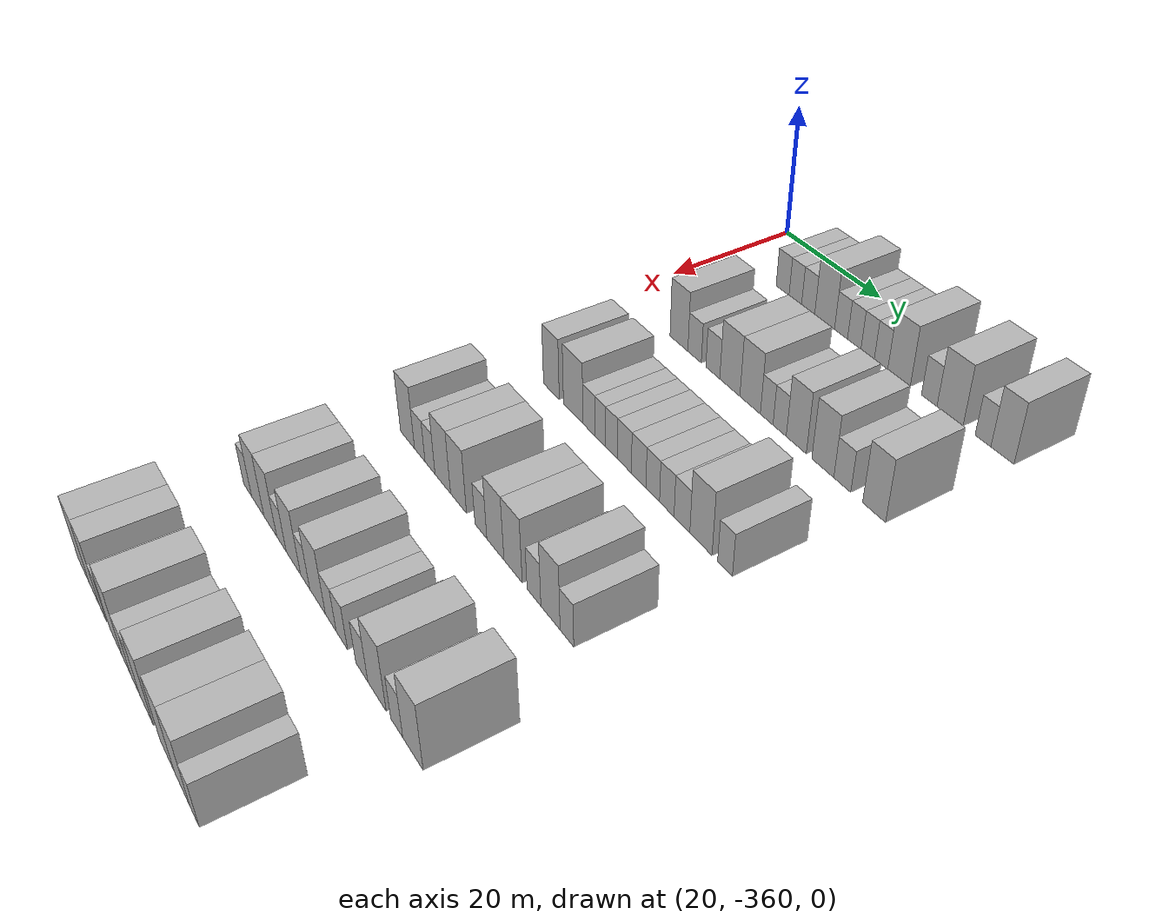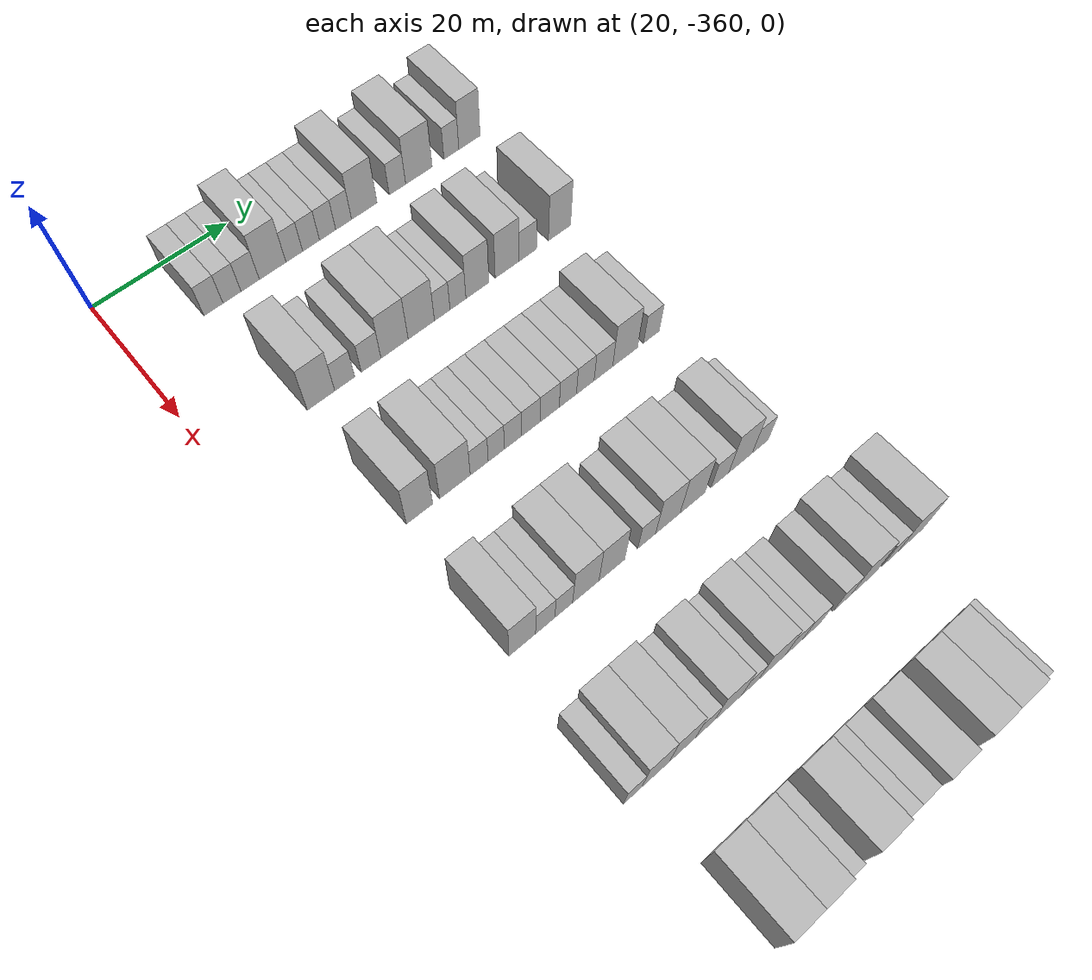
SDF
<sdf version="1.6">
 <world name="default">
  <model name="building_1">
   <static>1</static>
   <pose>25.0000 -348.5948 0 0.000000 0.000000 0.000000</pose>
   <link name="link">
    <pose>0 0 3.00 0 0 0</pose>
    <collision name="collision"><geometry><box><size>10.0000 2.8103 6.0000</size></box></geometry></collision>
    <visual name="visual">
     <cast_shadows>0</cast_shadows>
     <geometry><box><size>10.0000 2.8103 6.0000</size></box></geometry>
     <material>
      <script>
       <uri>model://HANNAS_wall/materials/scripts</uri>
       <uri>model://HANNAS_wall/materials/textures</uri>
       <name>vrc/HANNAS_wall</name>
      </script>
     </material>
    </visual>
   </link>
  </model>
  <model name="building_2">
   <static>1</static>
   <pose>25.0000 -345.8489 0 0.000000 0.000000 0.000000</pose>
   <link name="link">
    <pose>0 0 3.00 0 0 0</pose>
    <collision name="collision"><geometry><box><size>10.0000 2.6815 6.0000</size></box></geometry></collision>
    <visual name="visual">
     <cast_shadows>0</cast_shadows>
     <geometry><box><size>10.0000 2.6815 6.0000</size></box></geometry>
     <material>
      <script>
       <uri>model://HANNAS_wall/materials/scripts</uri>
       <uri>model://HANNAS_wall/materials/textures</uri>
       <name>vrc/HANNAS_wall</name>
      </script>
     </material>
    </visual>
   </link>
  </model>
  <model name="building_3">
   <static>1</static>
   <pose>25.0000 -343.1325 0 0.000000 0.000000 0.000000</pose>
   <link name="link">
    <pose>0 0 3.00 0 0 0</pose>
    <collision name="collision"><geometry><box><size>10.0000 2.7512 6.0000</size></box></geometry></collision>
    <visual name="visual">
     <cast_shadows>0</cast_shadows>
     <geometry><box><size>10.0000 2.7512 6.0000</size></box></geometry>
     <material>
      <script>
       <uri>model://HANNAS_wall/materials/scripts</uri>
       <uri>model://HANNAS_wall/materials/textures</uri>
       <name>vrc/HANNAS_wall</name>
      </script>
     </material>
    </visual>
   </link>
  </model>
  <model name="building_4">
   <static>1</static>
   <pose>25.0000 -339.7315 0 0.000000 0.000000 0.000000</pose>
   <link name="link">
    <pose>0 0 4.50 0 0 0</pose>
    <collision name="collision"><geometry><box><size>10.0000 4.0510 9.0000</size></box></geometry></collision>
    <visual name="visual">
     <cast_shadows>0</cast_shadows>
     <geometry><box><size>10.0000 4.0510 9.0000</size></box></geometry>
     <material>
      <script>
       <uri>model://HANNAS_wall/materials/scripts</uri>
       <uri>model://HANNAS_wall/materials/textures</uri>
       <name>vrc/HANNAS_wall</name>
      </script>
     </material>
    </visual>
   </link>
  </model>
  <model name="building_5">
   <static>1</static>
   <pose>25.0000 -336.4116 0 0.000000 0.000000 0.000000</pose>
   <link name="link">
    <pose>0 0 3.00 0 0 0</pose>
    <collision name="collision"><geometry><box><size>10.0000 2.5887 6.0000</size></box></geometry></collision>
    <visual name="visual">
     <cast_shadows>0</cast_shadows>
     <geometry><box><size>10.0000 2.5887 6.0000</size></box></geometry>
     <material>
      <script>
       <uri>model://HANNAS_wall/materials/scripts</uri>
       <uri>model://HANNAS_wall/materials/textures</uri>
       <name>vrc/HANNAS_wall</name>
      </script>
     </material>
    </visual>
   </link>
  </model>
  <model name="building_6">
   <static>1</static>
   <pose>25.0000 -333.8013 0 0.000000 0.000000 0.000000</pose>
   <link name="link">
    <pose>0 0 3.00 0 0 0</pose>
    <collision name="collision"><geometry><box><size>10.0000 2.6320 6.0000</size></box></geometry></collision>
    <visual name="visual">
     <cast_shadows>0</cast_shadows>
     <geometry><box><size>10.0000 2.6320 6.0000</size></box></geometry>
     <material>
      <script>
       <uri>model://HANNAS_wall/materials/scripts</uri>
       <uri>model://HANNAS_wall/materials/textures</uri>
       <name>vrc/HANNAS_wall</name>
      </script>
     </material>
    </visual>
   </link>
  </model>
  <model name="building_7">
   <static>1</static>
   <pose>25.0000 -331.2124 0 0.000000 0.000000 0.000000</pose>
   <link name="link">
    <pose>0 0 3.00 0 0 0</pose>
    <collision name="collision"><geometry><box><size>10.0000 2.5458 6.0000</size></box></geometry></collision>
    <visual name="visual">
     <cast_shadows>0</cast_shadows>
     <geometry><box><size>10.0000 2.5458 6.0000</size></box></geometry>
     <material>
      <script>
       <uri>model://HANNAS_wall/materials/scripts</uri>
       <uri>model://HANNAS_wall/materials/textures</uri>
       <name>vrc/HANNAS_wall</name>
      </script>
     </material>
    </visual>
   </link>
  </model>
  <model name="building_8">
   <static>1</static>
   <pose>25.0000 -328.6746 0 0.000000 0.000000 0.000000</pose>
   <link name="link">
    <pose>0 0 3.00 0 0 0</pose>
    <collision name="collision"><geometry><box><size>10.0000 2.5298 6.0000</size></box></geometry></collision>
    <visual name="visual">
     <cast_shadows>0</cast_shadows>
     <geometry><box><size>10.0000 2.5298 6.0000</size></box></geometry>
     <material>
      <script>
       <uri>model://HANNAS_wall/materials/scripts</uri>
       <uri>model://HANNAS_wall/materials/textures</uri>
       <name>vrc/HANNAS_wall</name>
      </script>
     </material>
    </visual>
   </link>
  </model>
  <model name="building_9">
   <static>1</static>
   <pose>25.0000 -325.3544 0 0.000000 0.000000 0.000000</pose>
   <link name="link">
    <pose>0 0 4.50 0 0 0</pose>
    <collision name="collision"><geometry><box><size>10.0000 4.1104 9.0000</size></box></geometry></collision>
    <visual name="visual">
     <cast_shadows>0</cast_shadows>
     <geometry><box><size>10.0000 4.1104 9.0000</size></box></geometry>
     <material>
      <script>
       <uri>model://HANNAS_wall/materials/scripts</uri>
       <uri>model://HANNAS_wall/materials/textures</uri>
       <name>vrc/HANNAS_wall</name>
      </script>
     </material>
    </visual>
   </link>
  </model>
  <model name="building_10">
   <static>1</static>
   <pose>25.0000 -319.9469 0 0.000000 0.000000 0.000000</pose>
   <link name="link">
    <pose>0 0 3.00 0 0 0</pose>
    <collision name="collision"><geometry><box><size>10.0000 2.7046 6.0000</size></box></geometry></collision>
    <visual name="visual">
     <cast_shadows>0</cast_shadows>
     <geometry><box><size>10.0000 2.7046 6.0000</size></box></geometry>
     <material>
      <script>
       <uri>model://HANNAS_wall/materials/scripts</uri>
       <uri>model://HANNAS_wall/materials/textures</uri>
       <name>vrc/HANNAS_wall</name>
      </script>
     </material>
    </visual>
   </link>
  </model>
  <model name="building_11">
   <static>1</static>
   <pose>25.0000 -316.3787 0 0.000000 0.000000 0.000000</pose>
   <link name="link">
    <pose>0 0 4.50 0 0 0</pose>
    <collision name="collision"><geometry><box><size>10.0000 4.4319 9.0000</size></box></geometry></collision>
    <visual name="visual">
     <cast_shadows>0</cast_shadows>
     <geometry><box><size>10.0000 4.4319 9.0000</size></box></geometry>
     <material>
      <script>
       <uri>model://HANNAS_wall/materials/scripts</uri>
       <uri>model://HANNAS_wall/materials/textures</uri>
       <name>vrc/HANNAS_wall</name>
      </script>
     </material>
    </visual>
   </link>
  </model>
  <model name="building_12">
   <static>1</static>
   <pose>25.0000 -310.8884 0 0.000000 0.000000 0.000000</pose>
   <link name="link">
    <pose>0 0 3.00 0 0 0</pose>
    <collision name="collision"><geometry><box><size>10.0000 2.5488 6.0000</size></box></geometry></collision>
    <visual name="visual">
     <cast_shadows>0</cast_shadows>
     <geometry><box><size>10.0000 2.5488 6.0000</size></box></geometry>
     <material>
      <script>
       <uri>model://HANNAS_wall/materials/scripts</uri>
       <uri>model://HANNAS_wall/materials/textures</uri>
       <name>vrc/HANNAS_wall</name>
      </script>
     </material>
    </visual>
   </link>
  </model>
  <model name="building_13">
   <static>1</static>
   <pose>25.0000 -307.7867 0 0.000000 0.000000 0.000000</pose>
   <link name="link">
    <pose>0 0 4.50 0 0 0</pose>
    <collision name="collision"><geometry><box><size>10.0000 3.6547 9.0000</size></box></geometry></collision>
    <visual name="visual">
     <cast_shadows>0</cast_shadows>
     <geometry><box><size>10.0000 3.6547 9.0000</size></box></geometry>
     <material>
      <script>
       <uri>model://HANNAS_wall/materials/scripts</uri>
       <uri>model://HANNAS_wall/materials/textures</uri>
       <name>vrc/HANNAS_wall</name>
      </script>
     </material>
    </visual>
   </link>
  </model>
  <model name="building_177">
   <static>1</static>
   <pose>44.0000 -345.9972 0 0.000000 0.000000 0.000000</pose>
   <link name="link">
    <pose>0 0 4.50 0 0 0</pose>
    <collision name="collision"><geometry><box><size>10.0000 4.0056 9.0000</size></box></geometry></collision>
    <visual name="visual">
     <cast_shadows>0</cast_shadows>
     <geometry><box><size>10.0000 4.0056 9.0000</size></box></geometry>
     <material>
      <script>
       <uri>model://HANNAS_wall/materials/scripts</uri>
       <uri>model://HANNAS_wall/materials/textures</uri>
       <name>vrc/HANNAS_wall</name>
      </script>
     </material>
    </visual>
   </link>
  </model>
  <model name="building_178">
   <static>1</static>
   <pose>44.0000 -342.5239 0 0.000000 0.000000 0.000000</pose>
   <link name="link">
    <pose>0 0 3.00 0 0 0</pose>
    <collision name="collision"><geometry><box><size>10.0000 2.9409 6.0000</size></box></geometry></collision>
    <visual name="visual">
     <cast_shadows>0</cast_shadows>
     <geometry><box><size>10.0000 2.9409 6.0000</size></box></geometry>
     <material>
      <script>
       <uri>model://HANNAS_wall/materials/scripts</uri>
       <uri>model://HANNAS_wall/materials/textures</uri>
       <name>vrc/HANNAS_wall</name>
      </script>
     </material>
    </visual>
   </link>
  </model>
  <model name="building_179">
   <static>1</static>
   <pose>44.0000 -338.5790 0 0.000000 0.000000 0.000000</pose>
   <link name="link">
    <pose>0 0 3.00 0 0 0</pose>
    <collision name="collision"><geometry><box><size>10.0000 2.9491 6.0000</size></box></geometry></collision>
    <visual name="visual">
     <cast_shadows>0</cast_shadows>
     <geometry><box><size>10.0000 2.9491 6.0000</size></box></geometry>
     <material>
      <script>
       <uri>model://HANNAS_wall/materials/scripts</uri>
       <uri>model://HANNAS_wall/materials/textures</uri>
       <name>vrc/HANNAS_wall</name>
      </script>
     </material>
    </visual>
   </link>
  </model>
  <model name="building_180">
   <static>1</static>
   <pose>44.0000 -335.0302 0 0.000000 0.000000 0.000000</pose>
   <link name="link">
    <pose>0 0 4.50 0 0 0</pose>
    <collision name="collision"><geometry><box><size>10.0000 4.1485 9.0000</size></box></geometry></collision>
    <visual name="visual">
     <cast_shadows>0</cast_shadows>
     <geometry><box><size>10.0000 4.1485 9.0000</size></box></geometry>
     <material>
      <script>
       <uri>model://HANNAS_wall/materials/scripts</uri>
       <uri>model://HANNAS_wall/materials/textures</uri>
       <name>vrc/HANNAS_wall</name>
      </script>
     </material>
    </visual>
   </link>
  </model>
  <model name="building_181">
   <static>1</static>
   <pose>44.0000 -330.9085 0 0.000000 0.000000 0.000000</pose>
   <link name="link">
    <pose>0 0 4.50 0 0 0</pose>
    <collision name="collision"><geometry><box><size>10.0000 4.0949 9.0000</size></box></geometry></collision>
    <visual name="visual">
     <cast_shadows>0</cast_shadows>
     <geometry><box><size>10.0000 4.0949 9.0000</size></box></geometry>
     <material>
      <script>
       <uri>model://HANNAS_wall/materials/scripts</uri>
       <uri>model://HANNAS_wall/materials/textures</uri>
       <name>vrc/HANNAS_wall</name>
      </script>
     </material>
    </visual>
   </link>
  </model>
  <model name="building_182">
   <static>1</static>
   <pose>44.0000 -327.6305 0 0.000000 0.000000 0.000000</pose>
   <link name="link">
    <pose>0 0 3.00 0 0 0</pose>
    <collision name="collision"><geometry><box><size>10.0000 2.4610 6.0000</size></box></geometry></collision>
    <visual name="visual">
     <cast_shadows>0</cast_shadows>
     <geometry><box><size>10.0000 2.4610 6.0000</size></box></geometry>
     <material>
      <script>
       <uri>model://HANNAS_wall/materials/scripts</uri>
       <uri>model://HANNAS_wall/materials/textures</uri>
       <name>vrc/HANNAS_wall</name>
      </script>
     </material>
    </visual>
   </link>
  </model>
  <model name="building_183">
   <static>1</static>
   <pose>44.0000 -325.1405 0 0.000000 0.000000 0.000000</pose>
   <link name="link">
    <pose>0 0 3.00 0 0 0</pose>
    <collision name="collision"><geometry><box><size>10.0000 2.5191 6.0000</size></box></geometry></collision>
    <visual name="visual">
     <cast_shadows>0</cast_shadows>
     <geometry><box><size>10.0000 2.5191 6.0000</size></box></geometry>
     <material>
      <script>
       <uri>model://HANNAS_wall/materials/scripts</uri>
       <uri>model://HANNAS_wall/materials/textures</uri>
       <name>vrc/HANNAS_wall</name>
      </script>
     </material>
    </visual>
   </link>
  </model>
  <model name="building_184">
   <static>1</static>
   <pose>44.0000 -322.0213 0 0.000000 0.000000 0.000000</pose>
   <link name="link">
    <pose>0 0 4.50 0 0 0</pose>
    <collision name="collision"><geometry><box><size>10.0000 3.7193 9.0000</size></box></geometry></collision>
    <visual name="visual">
     <cast_shadows>0</cast_shadows>
     <geometry><box><size>10.0000 3.7193 9.0000</size></box></geometry>
     <material>
      <script>
       <uri>model://HANNAS_wall/materials/scripts</uri>
       <uri>model://HANNAS_wall/materials/textures</uri>
       <name>vrc/HANNAS_wall</name>
      </script>
     </material>
    </visual>
   </link>
  </model>
  <model name="building_185">
   <static>1</static>
   <pose>44.0000 -317.2071 0 0.000000 0.000000 0.000000</pose>
   <link name="link">
    <pose>0 0 4.50 0 0 0</pose>
    <collision name="collision"><geometry><box><size>10.0000 3.9092 9.0000</size></box></geometry></collision>
    <visual name="visual">
     <cast_shadows>0</cast_shadows>
     <geometry><box><size>10.0000 3.9092 9.0000</size></box></geometry>
     <material>
      <script>
       <uri>model://HANNAS_wall/materials/scripts</uri>
       <uri>model://HANNAS_wall/materials/textures</uri>
       <name>vrc/HANNAS_wall</name>
      </script>
     </material>
    </visual>
   </link>
  </model>
  <model name="building_186">
   <static>1</static>
   <pose>44.0000 -313.7896 0 0.000000 0.000000 0.000000</pose>
   <link name="link">
    <pose>0 0 3.00 0 0 0</pose>
    <collision name="collision"><geometry><box><size>10.0000 2.9258 6.0000</size></box></geometry></collision>
    <visual name="visual">
     <cast_shadows>0</cast_shadows>
     <geometry><box><size>10.0000 2.9258 6.0000</size></box></geometry>
     <material>
      <script>
       <uri>model://HANNAS_wall/materials/scripts</uri>
       <uri>model://HANNAS_wall/materials/textures</uri>
       <name>vrc/HANNAS_wall</name>
      </script>
     </material>
    </visual>
   </link>
  </model>
  <model name="building_187">
   <static>1</static>
   <pose>44.0000 -308.4362 0 0.000000 0.000000 0.000000</pose>
   <link name="link">
    <pose>0 0 4.50 0 0 0</pose>
    <collision name="collision"><geometry><box><size>10.0000 3.7809 9.0000</size></box></geometry></collision>
    <visual name="visual">
     <cast_shadows>0</cast_shadows>
     <geometry><box><size>10.0000 3.7809 9.0000</size></box></geometry>
     <material>
      <script>
       <uri>model://HANNAS_wall/materials/scripts</uri>
       <uri>model://HANNAS_wall/materials/textures</uri>
       <name>vrc/HANNAS_wall</name>
      </script>
     </material>
    </visual>
   </link>
  </model>
  <model name="building_355">
   <static>1</static>
   <pose>63.0000 -346.1087 0 0.000000 0.000000 0.000000</pose>
   <link name="link">
    <pose>0 0 4.50 0 0 0</pose>
    <collision name="collision"><geometry><box><size>10.0000 3.7826 9.0000</size></box></geometry></collision>
    <visual name="visual">
     <cast_shadows>0</cast_shadows>
     <geometry><box><size>10.0000 3.7826 9.0000</size></box></geometry>
     <material>
      <script>
       <uri>model://HANNAS_wall/materials/scripts</uri>
       <uri>model://HANNAS_wall/materials/textures</uri>
       <name>vrc/HANNAS_wall</name>
      </script>
     </material>
    </visual>
   </link>
  </model>
  <model name="building_356">
   <static>1</static>
   <pose>63.0000 -340.9715 0 0.000000 0.000000 0.000000</pose>
   <link name="link">
    <pose>0 0 4.50 0 0 0</pose>
    <collision name="collision"><geometry><box><size>10.0000 4.4917 9.0000</size></box></geometry></collision>
    <visual name="visual">
     <cast_shadows>0</cast_shadows>
     <geometry><box><size>10.0000 4.4917 9.0000</size></box></geometry>
     <material>
      <script>
       <uri>model://HANNAS_wall/materials/scripts</uri>
       <uri>model://HANNAS_wall/materials/textures</uri>
       <name>vrc/HANNAS_wall</name>
      </script>
     </material>
    </visual>
   </link>
  </model>
  <model name="building_357">
   <static>1</static>
   <pose>63.0000 -337.3914 0 0.000000 0.000000 0.000000</pose>
   <link name="link">
    <pose>0 0 3.00 0 0 0</pose>
    <collision name="collision"><geometry><box><size>10.0000 2.6686 6.0000</size></box></geometry></collision>
    <visual name="visual">
     <cast_shadows>0</cast_shadows>
     <geometry><box><size>10.0000 2.6686 6.0000</size></box></geometry>
     <material>
      <script>
       <uri>model://HANNAS_wall/materials/scripts</uri>
       <uri>model://HANNAS_wall/materials/textures</uri>
       <name>vrc/HANNAS_wall</name>
      </script>
     </material>
    </visual>
   </link>
  </model>
  <model name="building_358">
   <static>1</static>
   <pose>63.0000 -334.8522 0 0.000000 0.000000 0.000000</pose>
   <link name="link">
    <pose>0 0 3.00 0 0 0</pose>
    <collision name="collision"><geometry><box><size>10.0000 2.4099 6.0000</size></box></geometry></collision>
    <visual name="visual">
     <cast_shadows>0</cast_shadows>
     <geometry><box><size>10.0000 2.4099 6.0000</size></box></geometry>
     <material>
      <script>
       <uri>model://HANNAS_wall/materials/scripts</uri>
       <uri>model://HANNAS_wall/materials/textures</uri>
       <name>vrc/HANNAS_wall</name>
      </script>
     </material>
    </visual>
   </link>
  </model>
  <model name="building_359">
   <static>1</static>
   <pose>63.0000 -332.3664 0 0.000000 0.000000 0.000000</pose>
   <link name="link">
    <pose>0 0 3.00 0 0 0</pose>
    <collision name="collision"><geometry><box><size>10.0000 2.5617 6.0000</size></box></geometry></collision>
    <visual name="visual">
     <cast_shadows>0</cast_shadows>
     <geometry><box><size>10.0000 2.5617 6.0000</size></box></geometry>
     <material>
      <script>
       <uri>model://HANNAS_wall/materials/scripts</uri>
       <uri>model://HANNAS_wall/materials/textures</uri>
       <name>vrc/HANNAS_wall</name>
      </script>
     </material>
    </visual>
   </link>
  </model>
  <model name="building_360">
   <static>1</static>
   <pose>63.0000 -329.6274 0 0.000000 0.000000 0.000000</pose>
   <link name="link">
    <pose>0 0 3.00 0 0 0</pose>
    <collision name="collision"><geometry><box><size>10.0000 2.9163 6.0000</size></box></geometry></collision>
    <visual name="visual">
     <cast_shadows>0</cast_shadows>
     <geometry><box><size>10.0000 2.9163 6.0000</size></box></geometry>
     <material>
      <script>
       <uri>model://HANNAS_wall/materials/scripts</uri>
       <uri>model://HANNAS_wall/materials/textures</uri>
       <name>vrc/HANNAS_wall</name>
      </script>
     </material>
    </visual>
   </link>
  </model>
  <model name="building_361">
   <static>1</static>
   <pose>63.0000 -326.6752 0 0.000000 0.000000 0.000000</pose>
   <link name="link">
    <pose>0 0 3.00 0 0 0</pose>
    <collision name="collision"><geometry><box><size>10.0000 2.9880 6.0000</size></box></geometry></collision>
    <visual name="visual">
     <cast_shadows>0</cast_shadows>
     <geometry><box><size>10.0000 2.9880 6.0000</size></box></geometry>
     <material>
      <script>
       <uri>model://HANNAS_wall/materials/scripts</uri>
       <uri>model://HANNAS_wall/materials/textures</uri>
       <name>vrc/HANNAS_wall</name>
      </script>
     </material>
    </visual>
   </link>
  </model>
  <model name="building_362">
   <static>1</static>
   <pose>63.0000 -323.8228 0 0.000000 0.000000 0.000000</pose>
   <link name="link">
    <pose>0 0 3.00 0 0 0</pose>
    <collision name="collision"><geometry><box><size>10.0000 2.7167 6.0000</size></box></geometry></collision>
    <visual name="visual">
     <cast_shadows>0</cast_shadows>
     <geometry><box><size>10.0000 2.7167 6.0000</size></box></geometry>
     <material>
      <script>
       <uri>model://HANNAS_wall/materials/scripts</uri>
       <uri>model://HANNAS_wall/materials/textures</uri>
       <name>vrc/HANNAS_wall</name>
      </script>
     </material>
    </visual>
   </link>
  </model>
  <model name="building_363">
   <static>1</static>
   <pose>63.0000 -321.0519 0 0.000000 0.000000 0.000000</pose>
   <link name="link">
    <pose>0 0 3.00 0 0 0</pose>
    <collision name="collision"><geometry><box><size>10.0000 2.8251 6.0000</size></box></geometry></collision>
    <visual name="visual">
     <cast_shadows>0</cast_shadows>
     <geometry><box><size>10.0000 2.8251 6.0000</size></box></geometry>
     <material>
      <script>
       <uri>model://HANNAS_wall/materials/scripts</uri>
       <uri>model://HANNAS_wall/materials/textures</uri>
       <name>vrc/HANNAS_wall</name>
      </script>
     </material>
    </visual>
   </link>
  </model>
  <model name="building_364">
   <static>1</static>
   <pose>63.0000 -318.1398 0 0.000000 0.000000 0.000000</pose>
   <link name="link">
    <pose>0 0 3.00 0 0 0</pose>
    <collision name="collision"><geometry><box><size>10.0000 2.9991 6.0000</size></box></geometry></collision>
    <visual name="visual">
     <cast_shadows>0</cast_shadows>
     <geometry><box><size>10.0000 2.9991 6.0000</size></box></geometry>
     <material>
      <script>
       <uri>model://HANNAS_wall/materials/scripts</uri>
       <uri>model://HANNAS_wall/materials/textures</uri>
       <name>vrc/HANNAS_wall</name>
      </script>
     </material>
    </visual>
   </link>
  </model>
  <model name="building_365">
   <static>1</static>
   <pose>63.0000 -314.5963 0 0.000000 0.000000 0.000000</pose>
   <link name="link">
    <pose>0 0 4.50 0 0 0</pose>
    <collision name="collision"><geometry><box><size>10.0000 4.0879 9.0000</size></box></geometry></collision>
    <visual name="visual">
     <cast_shadows>0</cast_shadows>
     <geometry><box><size>10.0000 4.0879 9.0000</size></box></geometry>
     <material>
      <script>
       <uri>model://HANNAS_wall/materials/scripts</uri>
       <uri>model://HANNAS_wall/materials/textures</uri>
       <name>vrc/HANNAS_wall</name>
      </script>
     </material>
    </visual>
   </link>
  </model>
  <model name="building_366">
   <static>1</static>
   <pose>63.0000 -310.2497 0 0.000000 0.000000 0.000000</pose>
   <link name="link">
    <pose>0 0 3.00 0 0 0</pose>
    <collision name="collision"><geometry><box><size>10.0000 2.6053 6.0000</size></box></geometry></collision>
    <visual name="visual">
     <cast_shadows>0</cast_shadows>
     <geometry><box><size>10.0000 2.6053 6.0000</size></box></geometry>
     <material>
      <script>
       <uri>model://HANNAS_wall/materials/scripts</uri>
       <uri>model://HANNAS_wall/materials/textures</uri>
       <name>vrc/HANNAS_wall</name>
      </script>
     </material>
    </visual>
   </link>
  </model>
  <model name="building_527">
   <static>1</static>
   <pose>82.0000 -347.1268 0 0.000000 0.000000 0.000000</pose>
   <link name="link">
    <pose>0 0 4.50 0 0 0</pose>
    <collision name="collision"><geometry><box><size>10.0000 3.7465 9.0000</size></box></geometry></collision>
    <visual name="visual">
     <cast_shadows>0</cast_shadows>
     <geometry><box><size>10.0000 3.7465 9.0000</size></box></geometry>
     <material>
      <script>
       <uri>model://HANNAS_wall/materials/scripts</uri>
       <uri>model://HANNAS_wall/materials/textures</uri>
       <name>vrc/HANNAS_wall</name>
      </script>
     </material>
    </visual>
   </link>
  </model>
  <model name="building_528">
   <static>1</static>
   <pose>82.0000 -343.8830 0 0.000000 0.000000 0.000000</pose>
   <link name="link">
    <pose>0 0 3.00 0 0 0</pose>
    <collision name="collision"><geometry><box><size>10.0000 2.7410 6.0000</size></box></geometry></collision>
    <visual name="visual">
     <cast_shadows>0</cast_shadows>
     <geometry><box><size>10.0000 2.7410 6.0000</size></box></geometry>
     <material>
      <script>
       <uri>model://HANNAS_wall/materials/scripts</uri>
       <uri>model://HANNAS_wall/materials/textures</uri>
       <name>vrc/HANNAS_wall</name>
      </script>
     </material>
    </visual>
   </link>
  </model>
  <model name="building_529">
   <static>1</static>
   <pose>82.0000 -341.2353 0 0.000000 0.000000 0.000000</pose>
   <link name="link">
    <pose>0 0 3.00 0 0 0</pose>
    <collision name="collision"><geometry><box><size>10.0000 2.5544 6.0000</size></box></geometry></collision>
    <visual name="visual">
     <cast_shadows>0</cast_shadows>
     <geometry><box><size>10.0000 2.5544 6.0000</size></box></geometry>
     <material>
      <script>
       <uri>model://HANNAS_wall/materials/scripts</uri>
       <uri>model://HANNAS_wall/materials/textures</uri>
       <name>vrc/HANNAS_wall</name>
      </script>
     </material>
    </visual>
   </link>
  </model>
  <model name="building_530">
   <static>1</static>
   <pose>82.0000 -338.0266 0 0.000000 0.000000 0.000000</pose>
   <link name="link">
    <pose>0 0 4.50 0 0 0</pose>
    <collision name="collision"><geometry><box><size>10.0000 3.8631 9.0000</size></box></geometry></collision>
    <visual name="visual">
     <cast_shadows>0</cast_shadows>
     <geometry><box><size>10.0000 3.8631 9.0000</size></box></geometry>
     <material>
      <script>
       <uri>model://HANNAS_wall/materials/scripts</uri>
       <uri>model://HANNAS_wall/materials/textures</uri>
       <name>vrc/HANNAS_wall</name>
      </script>
     </material>
    </visual>
   </link>
  </model>
  <model name="building_531">
   <static>1</static>
   <pose>82.0000 -334.1851 0 0.000000 0.000000 0.000000</pose>
   <link name="link">
    <pose>0 0 4.50 0 0 0</pose>
    <collision name="collision"><geometry><box><size>10.0000 3.8199 9.0000</size></box></geometry></collision>
    <visual name="visual">
     <cast_shadows>0</cast_shadows>
     <geometry><box><size>10.0000 3.8199 9.0000</size></box></geometry>
     <material>
      <script>
       <uri>model://HANNAS_wall/materials/scripts</uri>
       <uri>model://HANNAS_wall/materials/textures</uri>
       <name>vrc/HANNAS_wall</name>
      </script>
     </material>
    </visual>
   </link>
  </model>
  <model name="building_532">
   <static>1</static>
   <pose>82.0000 -328.9201 0 0.000000 0.000000 0.000000</pose>
   <link name="link">
    <pose>0 0 3.00 0 0 0</pose>
    <collision name="collision"><geometry><box><size>10.0000 2.7101 6.0000</size></box></geometry></collision>
    <visual name="visual">
     <cast_shadows>0</cast_shadows>
     <geometry><box><size>10.0000 2.7101 6.0000</size></box></geometry>
     <material>
      <script>
       <uri>model://HANNAS_wall/materials/scripts</uri>
       <uri>model://HANNAS_wall/materials/textures</uri>
       <name>vrc/HANNAS_wall</name>
      </script>
     </material>
    </visual>
   </link>
  </model>
  <model name="building_533">
   <static>1</static>
   <pose>82.0000 -325.6644 0 0.000000 0.000000 0.000000</pose>
   <link name="link">
    <pose>0 0 4.50 0 0 0</pose>
    <collision name="collision"><geometry><box><size>10.0000 3.8013 9.0000</size></box></geometry></collision>
    <visual name="visual">
     <cast_shadows>0</cast_shadows>
     <geometry><box><size>10.0000 3.8013 9.0000</size></box></geometry>
     <material>
      <script>
       <uri>model://HANNAS_wall/materials/scripts</uri>
       <uri>model://HANNAS_wall/materials/textures</uri>
       <name>vrc/HANNAS_wall</name>
      </script>
     </material>
    </visual>
   </link>
  </model>
  <model name="building_534">
   <static>1</static>
   <pose>82.0000 -321.8001 0 0.000000 0.000000 0.000000</pose>
   <link name="link">
    <pose>0 0 4.50 0 0 0</pose>
    <collision name="collision"><geometry><box><size>10.0000 3.9273 9.0000</size></box></geometry></collision>
    <visual name="visual">
     <cast_shadows>0</cast_shadows>
     <geometry><box><size>10.0000 3.9273 9.0000</size></box></geometry>
     <material>
      <script>
       <uri>model://HANNAS_wall/materials/scripts</uri>
       <uri>model://HANNAS_wall/materials/textures</uri>
       <name>vrc/HANNAS_wall</name>
      </script>
     </material>
    </visual>
   </link>
  </model>
  <model name="building_535">
   <static>1</static>
   <pose>82.0000 -317.4172 0 0.000000 0.000000 0.000000</pose>
   <link name="link">
    <pose>0 0 3.00 0 0 0</pose>
    <collision name="collision"><geometry><box><size>10.0000 2.8386 6.0000</size></box></geometry></collision>
    <visual name="visual">
     <cast_shadows>0</cast_shadows>
     <geometry><box><size>10.0000 2.8386 6.0000</size></box></geometry>
     <material>
      <script>
       <uri>model://HANNAS_wall/materials/scripts</uri>
       <uri>model://HANNAS_wall/materials/textures</uri>
       <name>vrc/HANNAS_wall</name>
      </script>
     </material>
    </visual>
   </link>
  </model>
  <model name="building_536">
   <static>1</static>
   <pose>82.0000 -314.0886 0 0.000000 0.000000 0.000000</pose>
   <link name="link">
    <pose>0 0 4.50 0 0 0</pose>
    <collision name="collision"><geometry><box><size>10.0000 3.8186 9.0000</size></box></geometry></collision>
    <visual name="visual">
     <cast_shadows>0</cast_shadows>
     <geometry><box><size>10.0000 3.8186 9.0000</size></box></geometry>
     <material>
      <script>
       <uri>model://HANNAS_wall/materials/scripts</uri>
       <uri>model://HANNAS_wall/materials/textures</uri>
       <name>vrc/HANNAS_wall</name>
      </script>
     </material>
    </visual>
   </link>
  </model>
  <model name="building_537">
   <static>1</static>
   <pose>82.0000 -310.8650 0 0.000000 0.000000 0.000000</pose>
   <link name="link">
    <pose>0 0 3.00 0 0 0</pose>
    <collision name="collision"><geometry><box><size>10.0000 2.6287 6.0000</size></box></geometry></collision>
    <visual name="visual">
     <cast_shadows>0</cast_shadows>
     <geometry><box><size>10.0000 2.6287 6.0000</size></box></geometry>
     <material>
      <script>
       <uri>model://HANNAS_wall/materials/scripts</uri>
       <uri>model://HANNAS_wall/materials/textures</uri>
       <name>vrc/HANNAS_wall</name>
      </script>
     </material>
    </visual>
   </link>
  </model>
  <model name="building_704">
   <static>1</static>
   <pose>101.0000 -348.7573 0 0.000000 0.000000 0.000000</pose>
   <link name="link">
    <pose>0 0 3.00 0 0 0</pose>
    <collision name="collision"><geometry><box><size>10.0000 2.4855 6.0000</size></box></geometry></collision>
    <visual name="visual">
     <cast_shadows>0</cast_shadows>
     <geometry><box><size>10.0000 2.4855 6.0000</size></box></geometry>
     <material>
      <script>
       <uri>model://HANNAS_wall/materials/scripts</uri>
       <uri>model://HANNAS_wall/materials/textures</uri>
       <name>vrc/HANNAS_wall</name>
      </script>
     </material>
    </visual>
   </link>
  </model>
  <model name="building_705">
   <static>1</static>
   <pose>101.0000 -345.6097 0 0.000000 0.000000 0.000000</pose>
   <link name="link">
    <pose>0 0 4.50 0 0 0</pose>
    <collision name="collision"><geometry><box><size>10.0000 3.8097 9.0000</size></box></geometry></collision>
    <visual name="visual">
     <cast_shadows>0</cast_shadows>
     <geometry><box><size>10.0000 3.8097 9.0000</size></box></geometry>
     <material>
      <script>
       <uri>model://HANNAS_wall/materials/scripts</uri>
       <uri>model://HANNAS_wall/materials/textures</uri>
       <name>vrc/HANNAS_wall</name>
      </script>
     </material>
    </visual>
   </link>
  </model>
  <model name="building_706">
   <static>1</static>
   <pose>101.0000 -341.8294 0 0.000000 0.000000 0.000000</pose>
   <link name="link">
    <pose>0 0 4.50 0 0 0</pose>
    <collision name="collision"><geometry><box><size>10.0000 3.7509 9.0000</size></box></geometry></collision>
    <visual name="visual">
     <cast_shadows>0</cast_shadows>
     <geometry><box><size>10.0000 3.7509 9.0000</size></box></geometry>
     <material>
      <script>
       <uri>model://HANNAS_wall/materials/scripts</uri>
       <uri>model://HANNAS_wall/materials/textures</uri>
       <name>vrc/HANNAS_wall</name>
      </script>
     </material>
    </visual>
   </link>
  </model>
  <model name="building_707">
   <static>1</static>
   <pose>101.0000 -338.5779 0 0.000000 0.000000 0.000000</pose>
   <link name="link">
    <pose>0 0 3.00 0 0 0</pose>
    <collision name="collision"><geometry><box><size>10.0000 2.7519 6.0000</size></box></geometry></collision>
    <visual name="visual">
     <cast_shadows>0</cast_shadows>
     <geometry><box><size>10.0000 2.7519 6.0000</size></box></geometry>
     <material>
      <script>
       <uri>model://HANNAS_wall/materials/scripts</uri>
       <uri>model://HANNAS_wall/materials/textures</uri>
       <name>vrc/HANNAS_wall</name>
      </script>
     </material>
    </visual>
   </link>
  </model>
  <model name="building_708">
   <static>1</static>
   <pose>101.0000 -335.2164 0 0.000000 0.000000 0.000000</pose>
   <link name="link">
    <pose>0 0 4.50 0 0 0</pose>
    <collision name="collision"><geometry><box><size>10.0000 3.9713 9.0000</size></box></geometry></collision>
    <visual name="visual">
     <cast_shadows>0</cast_shadows>
     <geometry><box><size>10.0000 3.9713 9.0000</size></box></geometry>
     <material>
      <script>
       <uri>model://HANNAS_wall/materials/scripts</uri>
       <uri>model://HANNAS_wall/materials/textures</uri>
       <name>vrc/HANNAS_wall</name>
      </script>
     </material>
    </visual>
   </link>
  </model>
  <model name="building_709">
   <static>1</static>
   <pose>101.0000 -331.9931 0 0.000000 0.000000 0.000000</pose>
   <link name="link">
    <pose>0 0 3.00 0 0 0</pose>
    <collision name="collision"><geometry><box><size>10.0000 2.4753 6.0000</size></box></geometry></collision>
    <visual name="visual">
     <cast_shadows>0</cast_shadows>
     <geometry><box><size>10.0000 2.4753 6.0000</size></box></geometry>
     <material>
      <script>
       <uri>model://HANNAS_wall/materials/scripts</uri>
       <uri>model://HANNAS_wall/materials/textures</uri>
       <name>vrc/HANNAS_wall</name>
      </script>
     </material>
    </visual>
   </link>
  </model>
  <model name="building_710">
   <static>1</static>
   <pose>101.0000 -328.7173 0 0.000000 0.000000 0.000000</pose>
   <link name="link">
    <pose>0 0 4.50 0 0 0</pose>
    <collision name="collision"><geometry><box><size>10.0000 4.0763 9.0000</size></box></geometry></collision>
    <visual name="visual">
     <cast_shadows>0</cast_shadows>
     <geometry><box><size>10.0000 4.0763 9.0000</size></box></geometry>
     <material>
      <script>
       <uri>model://HANNAS_wall/materials/scripts</uri>
       <uri>model://HANNAS_wall/materials/textures</uri>
       <name>vrc/HANNAS_wall</name>
      </script>
     </material>
    </visual>
   </link>
  </model>
  <model name="building_711">
   <static>1</static>
   <pose>101.0000 -325.3100 0 0.000000 0.000000 0.000000</pose>
   <link name="link">
    <pose>0 0 3.00 0 0 0</pose>
    <collision name="collision"><geometry><box><size>10.0000 2.7383 6.0000</size></box></geometry></collision>
    <visual name="visual">
     <cast_shadows>0</cast_shadows>
     <geometry><box><size>10.0000 2.7383 6.0000</size></box></geometry>
     <material>
      <script>
       <uri>model://HANNAS_wall/materials/scripts</uri>
       <uri>model://HANNAS_wall/materials/textures</uri>
       <name>vrc/HANNAS_wall</name>
      </script>
     </material>
    </visual>
   </link>
  </model>
  <model name="building_712">
   <static>1</static>
   <pose>101.0000 -322.5528 0 0.000000 0.000000 0.000000</pose>
   <link name="link">
    <pose>0 0 3.00 0 0 0</pose>
    <collision name="collision"><geometry><box><size>10.0000 2.7760 6.0000</size></box></geometry></collision>
    <visual name="visual">
     <cast_shadows>0</cast_shadows>
     <geometry><box><size>10.0000 2.7760 6.0000</size></box></geometry>
     <material>
      <script>
       <uri>model://HANNAS_wall/materials/scripts</uri>
       <uri>model://HANNAS_wall/materials/textures</uri>
       <name>vrc/HANNAS_wall</name>
      </script>
     </material>
    </visual>
   </link>
  </model>
  <model name="building_713">
   <static>1</static>
   <pose>101.0000 -317.7616 0 0.000000 0.000000 0.000000</pose>
   <link name="link">
    <pose>0 0 3.00 0 0 0</pose>
    <collision name="collision"><geometry><box><size>10.0000 2.8065 6.0000</size></box></geometry></collision>
    <visual name="visual">
     <cast_shadows>0</cast_shadows>
     <geometry><box><size>10.0000 2.8065 6.0000</size></box></geometry>
     <material>
      <script>
       <uri>model://HANNAS_wall/materials/scripts</uri>
       <uri>model://HANNAS_wall/materials/textures</uri>
       <name>vrc/HANNAS_wall</name>
      </script>
     </material>
    </visual>
   </link>
  </model>
  <model name="building_714">
   <static>1</static>
   <pose>101.0000 -314.2902 0 0.000000 0.000000 0.000000</pose>
   <link name="link">
    <pose>0 0 4.50 0 0 0</pose>
    <collision name="collision"><geometry><box><size>10.0000 4.1363 9.0000</size></box></geometry></collision>
    <visual name="visual">
     <cast_shadows>0</cast_shadows>
     <geometry><box><size>10.0000 4.1363 9.0000</size></box></geometry>
     <material>
      <script>
       <uri>model://HANNAS_wall/materials/scripts</uri>
       <uri>model://HANNAS_wall/materials/textures</uri>
       <name>vrc/HANNAS_wall</name>
      </script>
     </material>
    </visual>
   </link>
  </model>
  <model name="building_715">
   <static>1</static>
   <pose>101.0000 -309.9228 0 0.000000 0.000000 0.000000</pose>
   <link name="link">
    <pose>0 0 3.00 0 0 0</pose>
    <collision name="collision"><geometry><box><size>10.0000 2.5984 6.0000</size></box></geometry></collision>
    <visual name="visual">
     <cast_shadows>0</cast_shadows>
     <geometry><box><size>10.0000 2.5984 6.0000</size></box></geometry>
     <material>
      <script>
       <uri>model://HANNAS_wall/materials/scripts</uri>
       <uri>model://HANNAS_wall/materials/textures</uri>
       <name>vrc/HANNAS_wall</name>
      </script>
     </material>
    </visual>
   </link>
  </model>
  <model name="building_716">
   <static>1</static>
   <pose>101.0000 -306.5123 0 0.000000 0.000000 0.000000</pose>
   <link name="link">
    <pose>0 0 4.50 0 0 0</pose>
    <collision name="collision"><geometry><box><size>10.0000 4.2227 9.0000</size></box></geometry></collision>
    <visual name="visual">
     <cast_shadows>0</cast_shadows>
     <geometry><box><size>10.0000 4.2227 9.0000</size></box></geometry>
     <material>
      <script>
       <uri>model://HANNAS_wall/materials/scripts</uri>
       <uri>model://HANNAS_wall/materials/textures</uri>
       <name>vrc/HANNAS_wall</name>
      </script>
     </material>
    </visual>
   </link>
  </model>
  <model name="building_877">
   <static>1</static>
   <pose>120.0000 -345.8841 0 0.000000 0.000000 0.000000</pose>
   <link name="link">
    <pose>0 0 4.50 0 0 0</pose>
    <collision name="collision"><geometry><box><size>10.0000 4.2318 9.0000</size></box></geometry></collision>
    <visual name="visual">
     <cast_shadows>0</cast_shadows>
     <geometry><box><size>10.0000 4.2318 9.0000</size></box></geometry>
     <material>
      <script>
       <uri>model://HANNAS_wall/materials/scripts</uri>
       <uri>model://HANNAS_wall/materials/textures</uri>
       <name>vrc/HANNAS_wall</name>
      </script>
     </material>
    </visual>
   </link>
  </model>
  <model name="building_878">
   <static>1</static>
   <pose>120.0000 -341.8599 0 0.000000 0.000000 0.000000</pose>
   <link name="link">
    <pose>0 0 4.50 0 0 0</pose>
    <collision name="collision"><geometry><box><size>10.0000 3.8165 9.0000</size></box></geometry></collision>
    <visual name="visual">
     <cast_shadows>0</cast_shadows>
     <geometry><box><size>10.0000 3.8165 9.0000</size></box></geometry>
     <material>
      <script>
       <uri>model://HANNAS_wall/materials/scripts</uri>
       <uri>model://HANNAS_wall/materials/textures</uri>
       <name>vrc/HANNAS_wall</name>
      </script>
     </material>
    </visual>
   </link>
  </model>
  <model name="building_879">
   <static>1</static>
   <pose>120.0000 -338.6812 0 0.000000 0.000000 0.000000</pose>
   <link name="link">
    <pose>0 0 3.00 0 0 0</pose>
    <collision name="collision"><geometry><box><size>10.0000 2.5409 6.0000</size></box></geometry></collision>
    <visual name="visual">
     <cast_shadows>0</cast_shadows>
     <geometry><box><size>10.0000 2.5409 6.0000</size></box></geometry>
     <material>
      <script>
       <uri>model://HANNAS_wall/materials/scripts</uri>
       <uri>model://HANNAS_wall/materials/textures</uri>
       <name>vrc/HANNAS_wall</name>
      </script>
     </material>
    </visual>
   </link>
  </model>
  <model name="building_880">
   <static>1</static>
   <pose>120.0000 -334.2205 0 0.000000 0.000000 0.000000</pose>
   <link name="link">
    <pose>0 0 4.50 0 0 0</pose>
    <collision name="collision"><geometry><box><size>10.0000 4.3805 9.0000</size></box></geometry></collision>
    <visual name="visual">
     <cast_shadows>0</cast_shadows>
     <geometry><box><size>10.0000 4.3805 9.0000</size></box></geometry>
     <material>
      <script>
       <uri>model://HANNAS_wall/materials/scripts</uri>
       <uri>model://HANNAS_wall/materials/textures</uri>
       <name>vrc/HANNAS_wall</name>
      </script>
     </material>
    </visual>
   </link>
  </model>
  <model name="building_881">
   <static>1</static>
   <pose>120.0000 -330.6504 0 0.000000 0.000000 0.000000</pose>
   <link name="link">
    <pose>0 0 3.00 0 0 0</pose>
    <collision name="collision"><geometry><box><size>10.0000 2.7597 6.0000</size></box></geometry></collision>
    <visual name="visual">
     <cast_shadows>0</cast_shadows>
     <geometry><box><size>10.0000 2.7597 6.0000</size></box></geometry>
     <material>
      <script>
       <uri>model://HANNAS_wall/materials/scripts</uri>
       <uri>model://HANNAS_wall/materials/textures</uri>
       <name>vrc/HANNAS_wall</name>
      </script>
     </material>
    </visual>
   </link>
  </model>
  <model name="building_882">
   <static>1</static>
   <pose>120.0000 -327.8822 0 0.000000 0.000000 0.000000</pose>
   <link name="link">
    <pose>0 0 3.00 0 0 0</pose>
    <collision name="collision"><geometry><box><size>10.0000 2.7768 6.0000</size></box></geometry></collision>
    <visual name="visual">
     <cast_shadows>0</cast_shadows>
     <geometry><box><size>10.0000 2.7768 6.0000</size></box></geometry>
     <material>
      <script>
       <uri>model://HANNAS_wall/materials/scripts</uri>
       <uri>model://HANNAS_wall/materials/textures</uri>
       <name>vrc/HANNAS_wall</name>
      </script>
     </material>
    </visual>
   </link>
  </model>
  <model name="building_883">
   <static>1</static>
   <pose>120.0000 -324.3924 0 0.000000 0.000000 0.000000</pose>
   <link name="link">
    <pose>0 0 4.50 0 0 0</pose>
    <collision name="collision"><geometry><box><size>10.0000 4.2028 9.0000</size></box></geometry></collision>
    <visual name="visual">
     <cast_shadows>0</cast_shadows>
     <geometry><box><size>10.0000 4.2028 9.0000</size></box></geometry>
     <material>
      <script>
       <uri>model://HANNAS_wall/materials/scripts</uri>
       <uri>model://HANNAS_wall/materials/textures</uri>
       <name>vrc/HANNAS_wall</name>
      </script>
     </material>
    </visual>
   </link>
  </model>
  <model name="building_884">
   <static>1</static>
   <pose>120.0000 -318.2542 0 0.000000 0.000000 0.000000</pose>
   <link name="link">
    <pose>0 0 4.50 0 0 0</pose>
    <collision name="collision"><geometry><box><size>10.0000 4.0736 9.0000</size></box></geometry></collision>
    <visual name="visual">
     <cast_shadows>0</cast_shadows>
     <geometry><box><size>10.0000 4.0736 9.0000</size></box></geometry>
     <material>
      <script>
       <uri>model://HANNAS_wall/materials/scripts</uri>
       <uri>model://HANNAS_wall/materials/textures</uri>
       <name>vrc/HANNAS_wall</name>
      </script>
     </material>
    </visual>
   </link>
  </model>
  <model name="building_885">
   <static>1</static>
   <pose>120.0000 -314.0619 0 0.000000 0.000000 0.000000</pose>
   <link name="link">
    <pose>0 0 4.50 0 0 0</pose>
    <collision name="collision"><geometry><box><size>10.0000 4.3110 9.0000</size></box></geometry></collision>
    <visual name="visual">
     <cast_shadows>0</cast_shadows>
     <geometry><box><size>10.0000 4.3110 9.0000</size></box></geometry>
     <material>
      <script>
       <uri>model://HANNAS_wall/materials/scripts</uri>
       <uri>model://HANNAS_wall/materials/textures</uri>
       <name>vrc/HANNAS_wall</name>
      </script>
     </material>
    </visual>
   </link>
  </model>
  <model name="building_886">
   <static>1</static>
   <pose>120.0000 -310.6709 0 0.000000 0.000000 0.000000</pose>
   <link name="link">
    <pose>0 0 3.00 0 0 0</pose>
    <collision name="collision"><geometry><box><size>10.0000 2.4711 6.0000</size></box></geometry></collision>
    <visual name="visual">
     <cast_shadows>0</cast_shadows>
     <geometry><box><size>10.0000 2.4711 6.0000</size></box></geometry>
     <material>
      <script>
       <uri>model://HANNAS_wall/materials/scripts</uri>
       <uri>model://HANNAS_wall/materials/textures</uri>
       <name>vrc/HANNAS_wall</name>
      </script>
     </material>
    </visual>
   </link>
  </model>
 </world>
</sdf>
